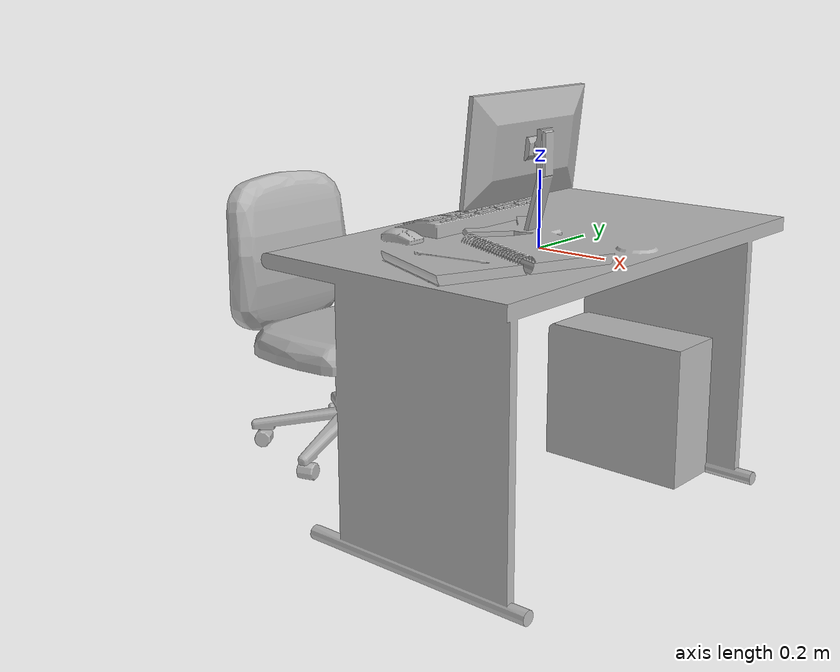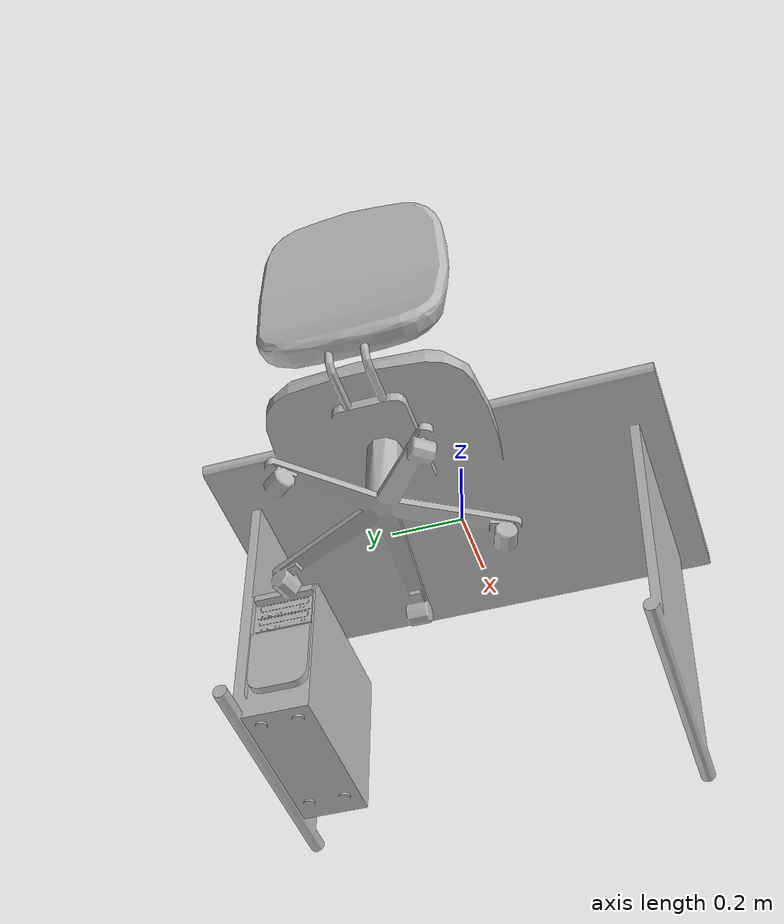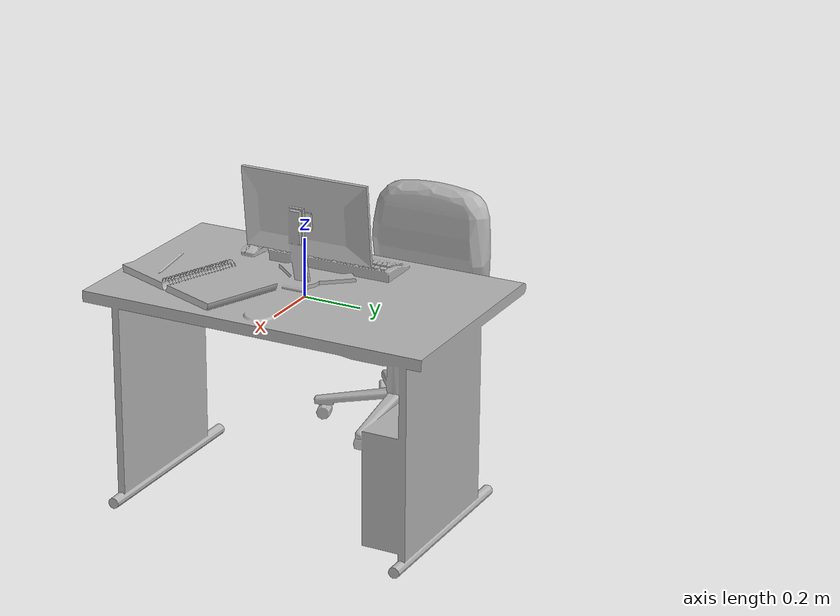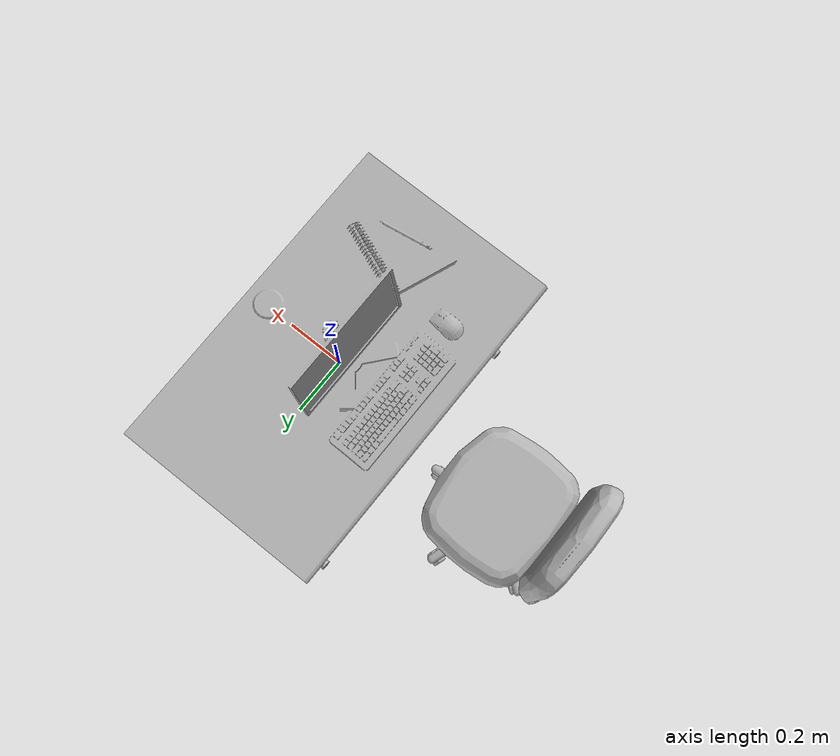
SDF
<?xml version="1.0" ?>
<sdf version="1.6">
  <model name="Student Desk - Workstation">
    <static>true</static>
    <link name="link">
      <visual name="visual">
        <geometry>
          <mesh>
            <uri>model://Student Desk - Workstation/meshes/Student_Desk_Workstation.obj</uri>
          </mesh>
        </geometry>
      </visual>
      <collision name="collision">
        <geometry>
          <mesh>
            <uri>model://Student Desk - Workstation/meshes/Student_Desk_Workstation.obj</uri>
          </mesh>
        </geometry>
      </collision>
    </link>
  </model>
</sdf>
